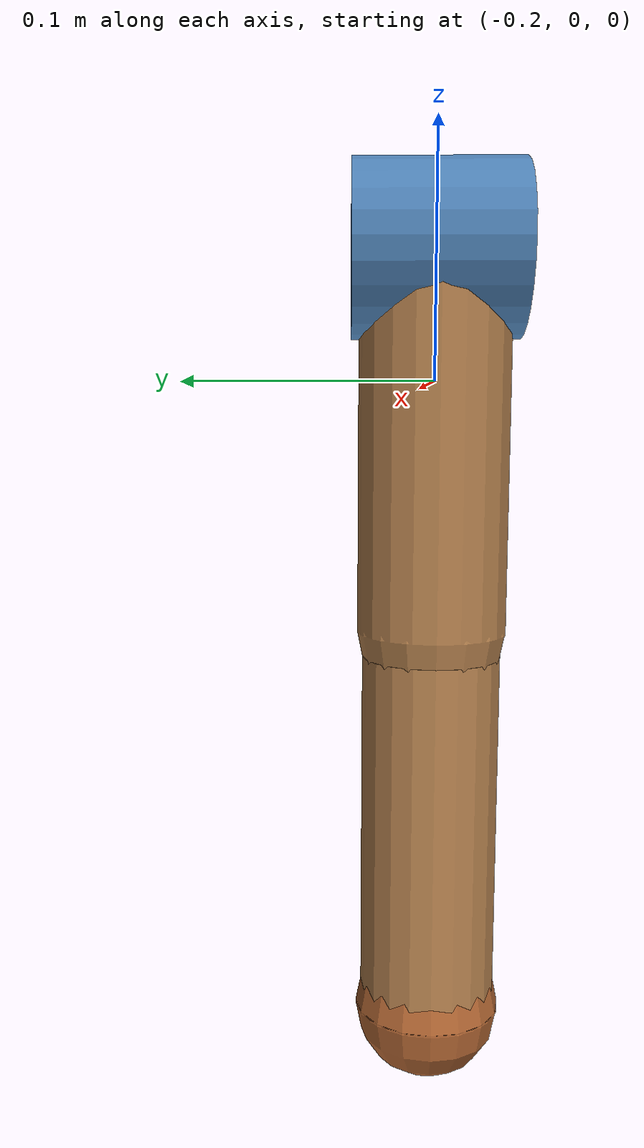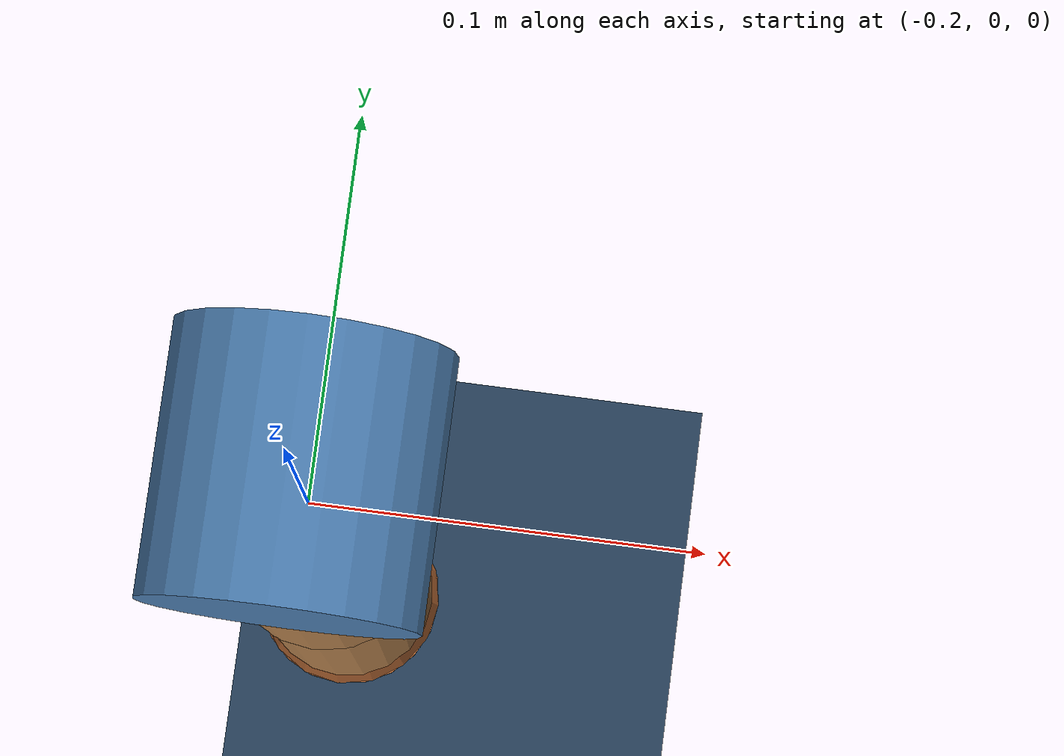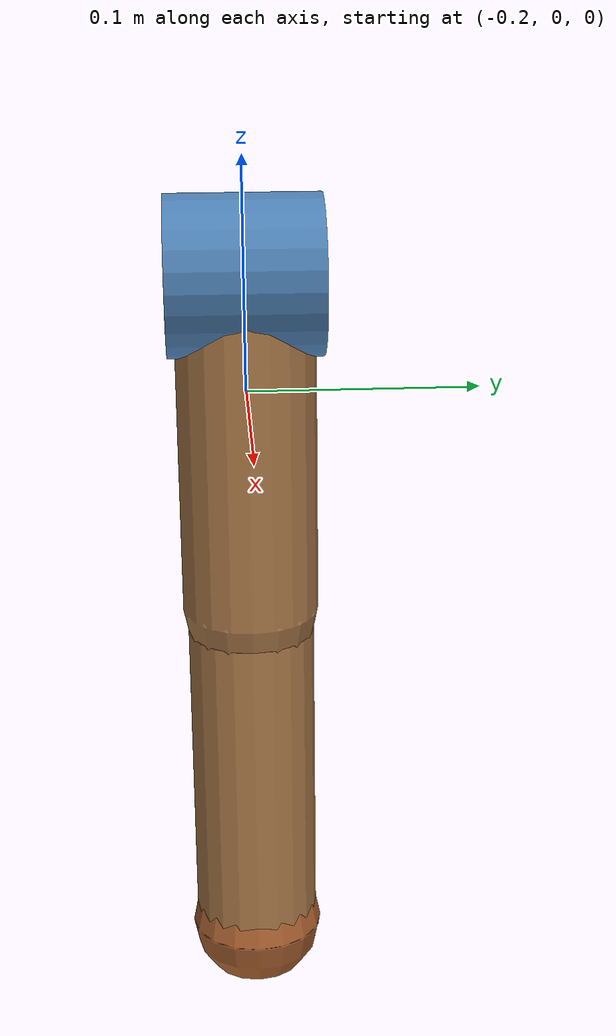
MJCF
<mujoco model="finger">

	<visual>
		<headlight ambient=".4 .4 .4" diffuse=".8 .8 .8" specular="0.1 0.1 0.1"/>
		<map znear=".01"/>
		<quality shadowsize="2048"/>
	</visual>

	<asset>
		<texture name="skybox" type="skybox" builtin="gradient" rgb1=".4 .6 .8" rgb2="0 0 0"
				 width="800" height="800" mark="random" markrgb="1 1 1"/>
	</asset>

	<asset>
		<texture name="grid" type="2d" builtin="checker" rgb1=".1 .2 .3" rgb2=".2 .3 .4" width="300" height="300" mark="edge" markrgb=".2 .3 .4"/>
		<material name="grid" texture="grid" texrepeat="1 1" texuniform="true" reflectance=".2"/>
		<material name="self" rgba=".7 .5 .3 1"/>
		<material name="self_default" rgba=".7 .5 .3 1"/>
		<material name="self_highlight" rgba="0 .5 .3 1"/>
		<material name="effector" rgba=".7 .4 .2 1"/>
		<material name="effector_default" rgba=".7 .4 .2 1"/>
		<material name="effector_highlight" rgba="0 .5 .3 1"/>
		<material name="decoration" rgba=".3 .5 .7 1"/>
		<material name="eye" rgba="0 .2 1 1"/>
		<material name="target" rgba=".6 .3 .3 1"/>
		<material name="target_default" rgba=".6 .3 .3 1"/>
		<material name="target_highlight" rgba=".6 .3 .3 .4"/>
	</asset>

	<option timestep="0.01" cone="elliptic" iterations="20">
		<flag gravity="enable"/>
	</option>

	<default>
		<geom solimp="0 0.9 0.01" solref=".02 1"/>
		<joint type="hinge" axis="0 -1 0"/>
		<motor ctrllimited="true" ctrlrange="-1 1"/>
		<default class="finger">
			<site type="ellipsoid" size=".025 .03 .025" rgba=".5 .5 .5 .3" group="3"/>
		</default>
	</default>

	<worldbody>
		<light name="light" directional="true" diffuse=".6 .6 .6" pos="0 0 2" specular=".3 .3 .3"/>
		<geom name="ground" type="plane" pos="0 0 -0.6" size=".6 .2 10" material="grid"/>
		<camera name="cam0" pos="0 -1 .8" xyaxes="1 0 0 0 1 2"/>
		<camera name="cam1" pos="0 -1 .4" xyaxes="1 0 0 0 0 1" />

		<body name="proximal" pos="-.2 0 0.05" childclass="finger">
			<geom name="proximal_decoration" type="cylinder" fromto="0 -.033 0 0 .033 0" size=".034" material="decoration"/>
			<joint name="proximal" range="-130 -60" damping="0.015" limited="false"/>
			<geom name="proximal" type="capsule" material="self" size=".03" fromto="0 0 0 0 0 -.15"/>
			<body name="distal" pos="0 0 -.16" childclass="finger">
				<joint name="distal" range="-45 45" damping="0.095" limited="false"/>
				<geom name="distal" type="capsule" size=".028" material="self" fromto="0 0 0 0 0 -.15" contype="0" conaffinity="0"/>
				<geom name="fingertip" type="capsule" size=".03" material="effector" fromto="0 0 -.15 0 0 -.151"/>
				<site name="touchtop" pos=".01 0 -.17"/>
				<site name="touchbottom" pos="-.01 0 -.17"/>
			</body>
		</body>
	</worldbody>

	<actuator>
		<general name="proximal" joint="proximal" />
		<general name="distal" joint="distal" gear="1.25 0 0 0 0 0" />
	</actuator>

	<!-- All finger observations are functions of sensors. This is useful for finite-differencing. -->
	<sensor>
		<jointpos name="proximal" joint="proximal"/>
		<jointpos name="distal" joint="distal"/>
		<jointvel name="proximal_velocity" joint="proximal"/>
		<jointvel name="distal_velocity" joint="distal"/>
		<touch name="touchtop" site="touchtop"/>
		<touch name="touchbottom" site="touchbottom"/>
		<framepos name="touchtop_pos" objtype="site" objname="touchtop"/>
		<framepos name="touchbottom_pos" objtype="site" objname="touchbottom"/>
	</sensor>

</mujoco>
